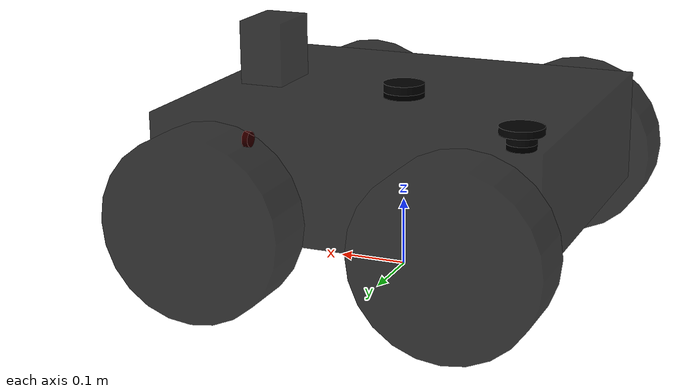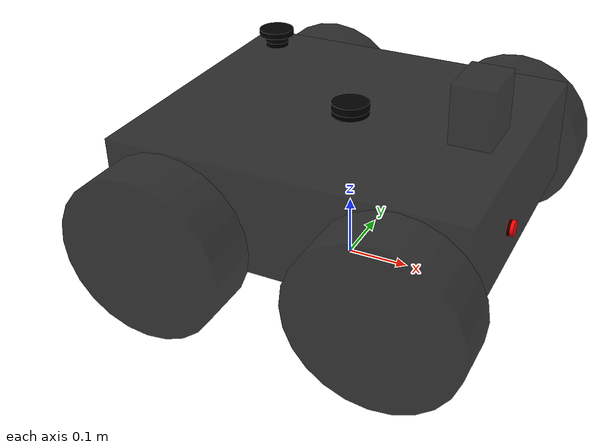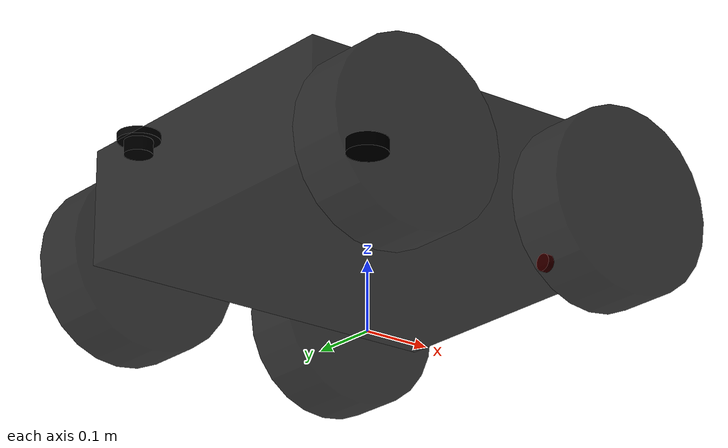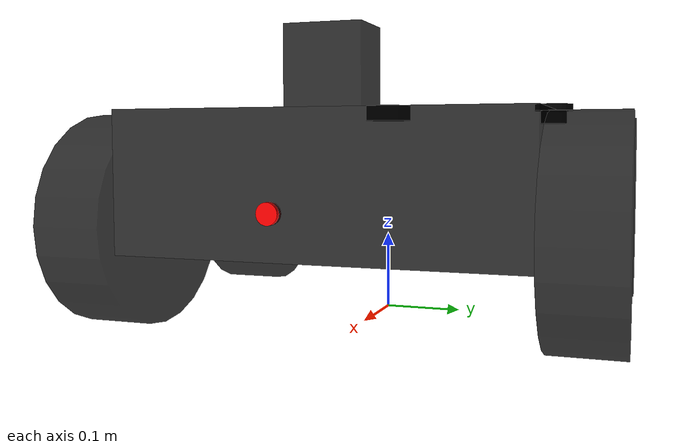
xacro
<?xml version="1.0"?>
<robot name="jaguar_robot" xmlns:xacro="http://ros.org/wiki/xacro">
    <xacro:include filename="$(find jaguar4x4_ros2)/urdf/wheel.urdf.xacro"/>
    <xacro:include filename="$(find jaguar4x4_ros2)/urdf/lidar.xacro"/>

    <xacro:arg name="3D_enabled" default="false"/>
    <xacro:arg name="viper" default="false"/>

    <xacro:property name="M_PI" value="3.14159"/>

    <xacro:property name="wheel_length" value="0.085"/>
    <xacro:property name="wheel_radius" value="0.13"/>

    <xacro:property name="distance_from_ground" value="0.09"/>
    <xacro:property name="wheel_base_offset" value="0.03"/>
    <xacro:property name="base_x_size" value="${0.615-2*wheel_base_offset}"/>
    <xacro:property name="base_y_size" value="${0.56-wheel_length}"/>
    <xacro:property name="base_z_size" value="${0.255-distance_from_ground}"/>

    <xacro:property name="wheelbase" value="${base_x_size-2*wheel_radius+2*wheel_base_offset}"/>
    <xacro:property name="track" value="${base_y_size+wheel_length}"/>
    <xacro:property name="wheel_vertical_offset" value="${wheel_radius}"/>

    <xacro:property name="laser_x" value="${base_x_size/2-0.0725}"/>
    <xacro:property name="laser_y" value="0"/>
    <xacro:property name="laser_z" value="${0.255+0.15}"/>

    <xacro:property name="laser_x_size" value="0.065"/>
    <xacro:property name="laser_y_size" value="0.09"/>
    <xacro:property name="laser_z_size" value="0.1"/>

    <xacro:property name="camera_x" value="${base_x_size/2}"/>
    <xacro:property name="camera_y" value="-0.045"/>
    <xacro:property name="camera_z" value="0.15"/>

    <xacro:property name="camera_radius" value="${0.025/2}"/>
    <xacro:property name="camera_length" value="0.01"/>

    <xacro:property name="pole_length" value="0.02"/>
    <xacro:property name="pole_radius" value="0.03"/>

    <xacro:property name="gps_pole_length" value="0.02"/>
    <xacro:property name="gps_pole_radius" value="0.02"/>
    <xacro:property name="gps_pole_x" value="${-base_x_size/2+0.04}"/>
    <xacro:property name="gps_pole_y" value="${base_y_size/2-0.04}"/>
    <xacro:property name="gps_pole_z" value="${base_z_size+distance_from_ground+gps_pole_length/2}"/>
    <xacro:property name="gps_top_plate_length" value="0.01"/>
    <xacro:property name="gps_top_plate_radius" value="0.03"/>

    <link name="base_link">
        <visual>
            <origin xyz="0 0 ${2*distance_from_ground}" rpy="0 0 0"/>
            <geometry>
                <box size="${base_x_size} ${base_y_size} ${base_z_size}"/>
            </geometry>
            <material name="black">
                <color rgba="0 0 0 0.8"/>
            </material>
        </visual>
        <collision>
            <origin xyz="0 0 ${2*distance_from_ground}" rpy="0 0 0"/>
            <geometry>
                <box size="${base_x_size} ${base_y_size} ${base_z_size}"/>
            </geometry>
        </collision>
    </link>

    <link name="base_footprint"/>
    <joint name="base_footprint_joint" type="fixed">
        <origin xyz="0 0 0" rpy="0 0 0"/>
        <parent link="base_footprint"/>
        <child link="base_link"/>
    </joint>

    <link name="inertial_link">
        <inertial>
            <mass value="33.455"/>
            <origin xyz="-0.08748 -0.00085 0.09947"/>
            <inertia ixx="0.6022" ixy="-0.02364" ixz="-0.1197" iyy="1.7386" iyz="-0.001544" izz="2.0296"/>
        </inertial>
    </link>
    <joint name="inertial_joint" type="fixed">
        <origin xyz="0 0 0" rpy="0 0 0"/>
        <parent link="base_link"/>
        <child link="inertial_link"/>
    </joint>

    <link name="imu_link"/>
    <joint name="imu_joint" type="fixed">
        <origin xyz="0 0 ${base_z_size}" rpy="0 0 0"/>
        <parent link="base_link"/>
        <child link="imu_link"/>
    </joint>

    <xacro:jaguar_wheel wheel_prefix="front_left">
        <origin xyz="${wheelbase/2} ${track/2} ${wheel_vertical_offset}" rpy="0 0 0"/>
    </xacro:jaguar_wheel>
    <xacro:jaguar_wheel wheel_prefix="front_right">
        <origin xyz="${wheelbase/2} ${-track/2} ${wheel_vertical_offset}" rpy="0 0 0"/>
    </xacro:jaguar_wheel>
    <xacro:jaguar_wheel wheel_prefix="rear_left">
        <origin xyz="${-wheelbase/2} ${track/2} ${wheel_vertical_offset}" rpy="0 0 0"/>
    </xacro:jaguar_wheel>
    <xacro:jaguar_wheel wheel_prefix="rear_right">
        <origin xyz="${-wheelbase/2} ${-track/2} ${wheel_vertical_offset}" rpy="0 0 0"/>
    </xacro:jaguar_wheel>

    <joint name="camera_joint" type="fixed">
        <origin xyz="${camera_x} ${camera_y} ${camera_z}" rpy="0 0 0"/>
        <parent link="base_link"/>
        <child link="webcamera_link"/>
    </joint>

    <link name="webcamera_link">
        <visual>
            <origin xyz="0 0 0" rpy="0 ${M_PI/2} 0"/>
            <geometry>
                <cylinder length="${camera_length}" radius="${camera_radius}"/>
            </geometry>
            <material name="red">
                <color rgba="255 0 0 1"/>
            </material>
        </visual>
        <collision>
            <origin xyz="0 0 0" rpy="0 ${M_PI/2} 0"/>
            <geometry>
                <cylinder length="${camera_length}" radius="${camera_radius}"/>
            </geometry>
        </collision>
    </link>

    <joint name="depth_camera_pole_joint" type="fixed">
        <origin xyz="0 0 ${base_z_size+distance_from_ground+pole_length/2}" rpy="0 0 0"/>
        <parent link="base_link"/>
        <child link="depth_camera_pole_link"/>
    </joint>

    <link name="depth_camera_pole_link">
        <visual>
            <origin xyz="0 0 0" rpy="0 0 0"/>
            <geometry>
                <cylinder length="${pole_length}" radius="${pole_radius}"/>
            </geometry>
            <material name="black">
                <color rgba="0 0 0 1"/>
            </material>
        </visual>
        <collision>
            <origin xyz="0 0 0" rpy="0 0 0"/>
            <geometry>
                <cylinder length="${pole_length}" radius="${pole_radius}"/>
            </geometry>
        </collision>
    </link>

    <joint name="gps_pole_joint" type="fixed">
        <origin xyz="${gps_pole_x} ${gps_pole_y} ${gps_pole_z}" rpy="0 0 0"/>
        <parent link="base_link"/>
        <child link="gps_pole_link"/>
    </joint>

    <link name="gps_pole_link">
        <visual>
            <origin xyz="0 0 0" rpy="0 0 0"/>
            <geometry>
                <cylinder length="${gps_pole_length}" radius="${gps_pole_radius}"/>
            </geometry>
            <material name="black">
                <color rgba="0 0 0 1"/>
            </material>
        </visual>
        <collision>
            <origin xyz="0 0 0" rpy="0 0 0"/>
            <geometry>
                <cylinder length="${gps_pole_length}" radius="${gps_pole_radius}"/>
            </geometry>
        </collision>
    </link>

    <link name="gps_top_plate_link">
        <visual>
            <origin xyz="0 0 0" rpy="0 0 0"/>
            <geometry>
                <cylinder length="${gps_top_plate_length}" radius="${gps_top_plate_radius}"/>
            </geometry>
            <material name="black">
                <color rgba="0 0 0 1"/>
            </material>
        </visual>
        <collision>
            <origin xyz="0 0 0" rpy="0 0 0"/>
            <geometry>
                <cylinder length="${gps_top_plate_length}" radius="${gps_top_plate_radius}"/>
            </geometry>
        </collision>
    </link>

    <joint name="gps_top_plate_joint" type="fixed">
        <origin xyz="0 0 ${gps_pole_length/2+gps_top_plate_length/2}" rpy="0 0 0"/>
        <parent link="gps_pole_link"/>
        <child link="gps_top_plate_link"/>
    </joint>

    <joint name="gps_joint" type="fixed">
        <origin xyz="0 0 0" rpy="0 0 0"/>
        <parent link="gps_top_plate_link"/>
        <child link="gps_link"/>
    </joint>

    <link name="gps_link"/>

    <gazebo>
        <plugin name='diff_drive_front' filename='libgazebo_ros_diff_drive.so'>
            <update_rate>50</update_rate>
            <left_joint>front_left_wheel_joint</left_joint>
            <right_joint>front_right_wheel_joint</right_joint>

            <wheel_separation>${track}</wheel_separation>
            <wheel_diameter>${2*wheel_radius}</wheel_diameter>

            <max_wheel_torque>500</max_wheel_torque>
            <max_wheel_acceleration>10.0</max_wheel_acceleration>

            <command_topic>ros_drrobot_motor_cmd</command_topic>
            <publish_odom>true</publish_odom>
            <publish_odom_tf>true</publish_odom_tf>
            <publish_wheel_tf>true</publish_wheel_tf>

            <odometry_frame>odom</odometry_frame>
            <robot_base_frame>base_footprint</robot_base_frame>
        </plugin>
    </gazebo>

    <gazebo>
        <plugin name='diff_drive_rear' filename='libgazebo_ros_diff_drive.so'>
            <update_rate>50</update_rate>
            <left_joint>rear_left_wheel_joint</left_joint>
            <right_joint>rear_right_wheel_joint</right_joint>

            <wheel_separation>${track}</wheel_separation>
            <wheel_diameter>${2*wheel_radius}</wheel_diameter>

            <max_wheel_torque>500</max_wheel_torque>
            <max_wheel_acceleration>10.0</max_wheel_acceleration>

            <command_topic>ros_drrobot_motor_cmd</command_topic>
            <publish_odom>false</publish_odom>
            <publish_odom_tf>false</publish_odom_tf>
            <publish_wheel_tf>true</publish_wheel_tf>

            <odometry_frame>odom</odometry_frame>
            <robot_base_frame>base_footprint</robot_base_frame>
        </plugin>
    </gazebo>

    <gazebo reference="imu_link">
        <sensor name="imu_sensor" type="imu">
            <always_on>true</always_on>
            <update_rate>50</update_rate>
            <plugin name="imu_plugin" filename="libgazebo_ros_imu_sensor.so">
                <ros>
                    <namespace>/drrobot_imu</namespace>
                    <remapping>~/out:=data</remapping>
                </ros>
            </plugin>
        </sensor>
    </gazebo>

    <gazebo reference="gps_link">
        <sensor name="gps_sensor" type="gps">
            <always_on>true</always_on>
            <update_rate>5.0</update_rate>
            <plugin name="gps_plugin" filename="libgazebo_ros_gps_sensor.so">
                <ros>
                    <namespace>/drrobot_gps</namespace>
                    <remapping>~/out:=fix</remapping>
                </ros>
            </plugin>
        </sensor>
    </gazebo>

</robot>

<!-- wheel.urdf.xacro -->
<robot name="jaguar_wheel" xmlns:xacro="http://ros.org/wiki/xacro">

    <xacro:macro name="jaguar_wheel" params="wheel_prefix *joint_pose">
        <link name="${wheel_prefix}_wheel_link">
            <inertial>
                <mass value="2.637" />
                <origin xyz="0 0 0" />
                <inertia  ixx="0.02467" ixy="0" ixz="0" iyy="0.02467" iyz="0" izz="0.04411" />
            </inertial>
            <visual>
                <origin xyz="0 0 0" rpy="${M_PI/2} 0 0" />
                <geometry>
                    <cylinder length="${wheel_length}" radius="${wheel_radius}" />
                </geometry>
                <material name="black"/>
            </visual>
            <collision>
                <origin xyz="0 0 0" rpy="${M_PI/2} 0 0" />
                <geometry>
                    <cylinder length="${wheel_length}" radius="${wheel_radius}" />
                </geometry>
            </collision>
        </link>

        <joint name="${wheel_prefix}_wheel_joint" type="continuous">
            <parent link="base_link"/>
            <child link="${wheel_prefix}_wheel_link"/>
            <xacro:insert_block name="joint_pose"/>
            <axis xyz="0 1 0" rpy="0 0 0" />
        </joint>

        <gazebo reference="${wheel_prefix}_wheel_link">
            <mu1>0.5</mu1>
            <mu2>0.5</mu2>
            <kp>10000000.0</kp>
            <kd>1.0</kd>
            <minDepth>0.001</minDepth>
            <maxVel>0.1</maxVel>
            <material>Gazebo/Black</material>
        </gazebo>

    </xacro:macro>
</robot>

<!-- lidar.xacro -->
<robot name="jaguar_robot" xmlns:xacro="http://ros.org/wiki/xacro">
`
    <xacro:property name="wheel_base_offset" value="0.03"/>
    <xacro:property name="base_x_size" value="${0.615-2*wheel_base_offset}"/>

    <xacro:property name="laser_x" value="${base_x_size/2-0.0725}"/>
    <xacro:property name="laser_y" value="0"/>
    <xacro:property name="laser_z" value="${0.255+0.05}"/>

    <xacro:property name="laser_x_size" value="0.065"/>
    <xacro:property name="laser_y_size" value="0.09"/>
    <xacro:property name="laser_z_size" value="0.1"/>

    <link name="laser">

    <inertial>
        <origin xyz="0 0 0" rpy="0 0 0"/>
        <mass value="0.1"/>
        <inertia ixx="0.001" ixy="0.0" ixz="0.0" iyy="0.001" iyz="0.0" izz="0.001"/>
    </inertial>

    <collision>
        <origin xyz="0 0 0" rpy="0 0 0"/>
        <geometry>
        <box size="${laser_x_size} ${laser_y_size} ${laser_z_size}"/>
        </geometry>
    </collision>

    <visual>
        <origin xyz="0 0 0" rpy="0 0 0"/>
        <geometry>
            <box size="${laser_x_size} ${laser_y_size} ${laser_z_size}"/>
        </geometry>
        <material name="black">
            <color rgba="0 0 0 0.8"/>
        </material>
    </visual>
    </link>

    <joint name="laser_joint" type="fixed">
    <origin xyz="${laser_x} ${laser_y} ${laser_z}" rpy="0 0 0"/>
    <parent link="base_link"/>
    <child link="laser"/>
    </joint>

    <gazebo reference="laser">
    <sensor name="jaguar_lidar" type="ray">
        <always_on>true</always_on>
        <update_rate>50</update_rate>
        <visualize>true</visualize>

        <ray>
        <scan>
            <horizontal>
            <samples>40</samples>
            <resolution>1</resolution>
            <min_angle>-3.14159</min_angle>
            <max_angle>3.14159</max_angle>
            </horizontal>
        </scan>

        <range>
            <min>0.35</min>
            <max>12.0</max>
            <resolution>0.01</resolution>
        </range>
        </ray>

        <plugin name="gazebo_ros_laser" filename="libgazebo_ros_ray_sensor.so">
        <ros>
            <remapping>~/out:=scan</remapping>
        </ros>
        <frame_name>laser</frame_name>
        <output_type>sensor_msgs/LaserScan</output_type>
        </plugin>

    </sensor>
    </gazebo>
</robot>
